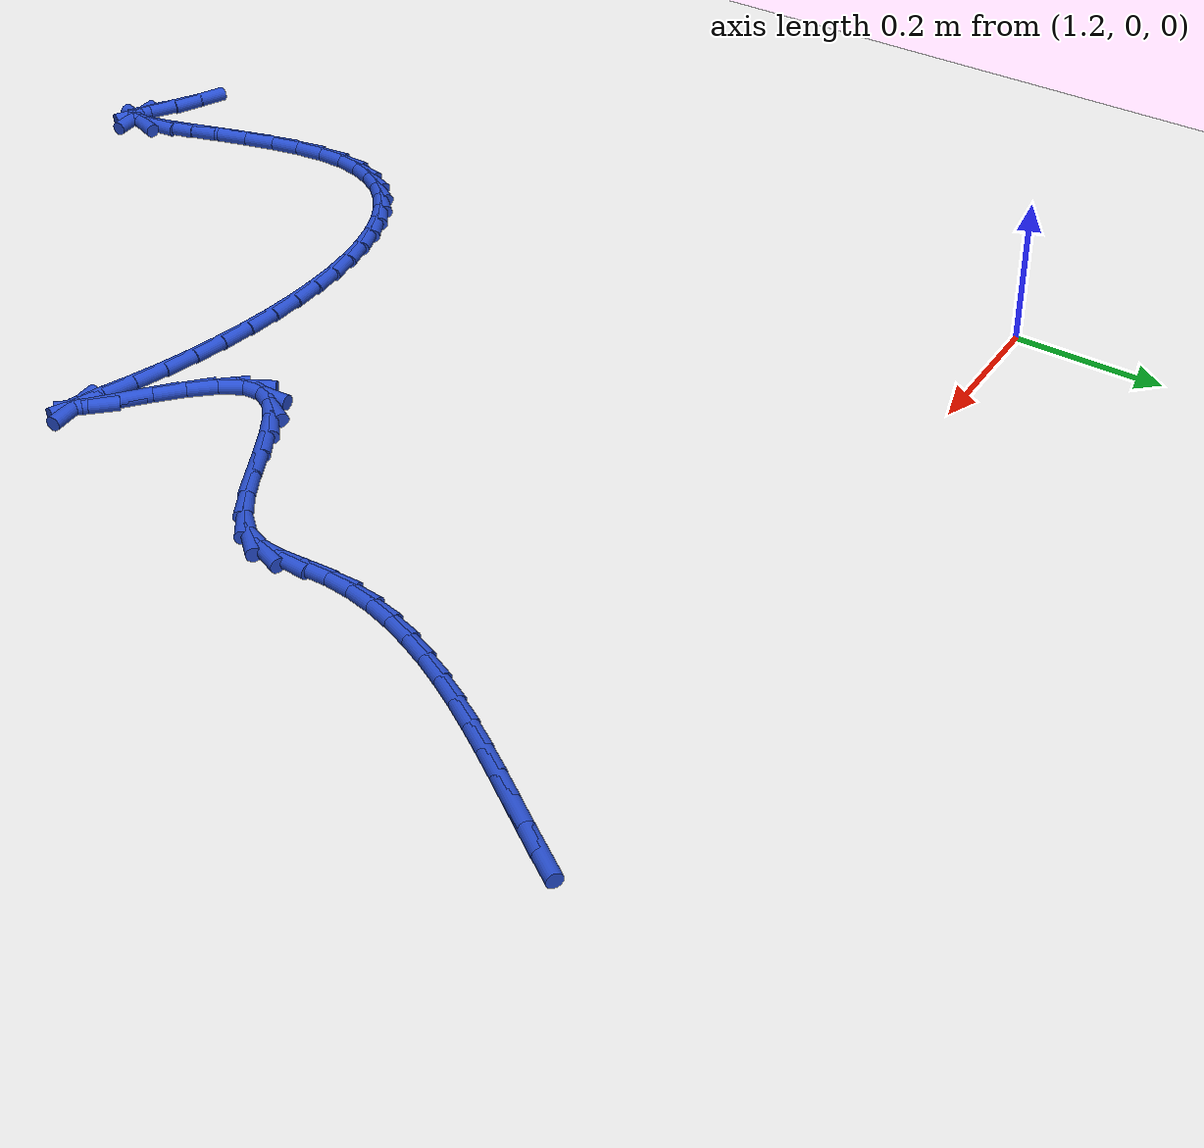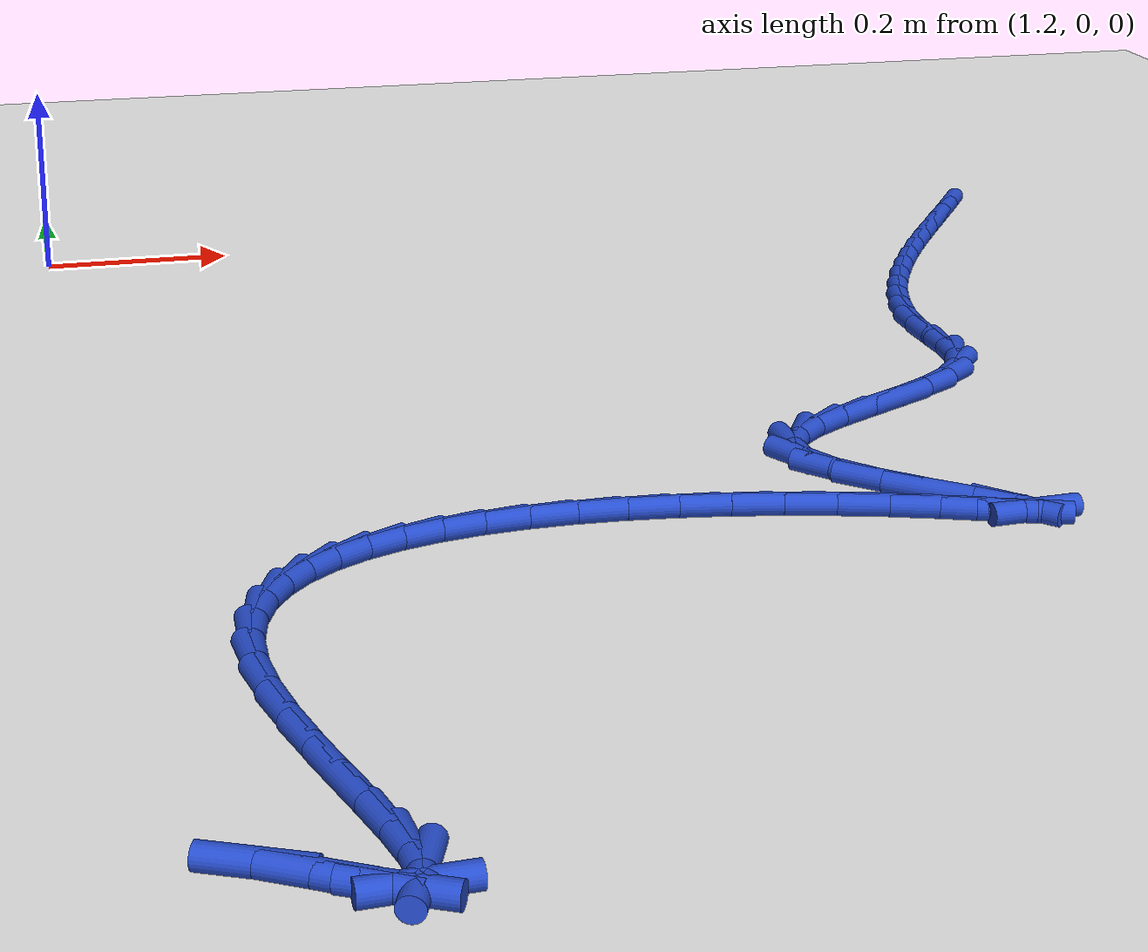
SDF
<sdf version="1.6">
 <world name="default">
  <model name="ground_plane">
   <static>1</static>
   <link name="link">
    <collision name="collision">
     <geometry><plane><normal>0 0 1</normal><size>100 100</size></plane></geometry>
     <surface><friction><ode><mu>100</mu><mu2>50</mu2></ode></friction></surface>
    </collision>
    <visual name="visual">
     <cast_shadows>0</cast_shadows>
     <geometry><plane><normal>0 0 1</normal><size>100 100</size></plane></geometry>
     <material>
      <script><uri>file://media/materials/scripts/gazebo.material</uri><name>Gazebo/WhiteGlow</name></script>
     </material>
    </visual>
   </link>
  </model>
  <model name="line">
   <link name="link_135">
    <pose>2.295636910752263 -0.007990219199116327 0.01 0 1.57 0.9678860935777894</pose>
    <collision name="collision">
     <geometry><cylinder><radius>0.01</radius><length>0.08</length></cylinder></geometry>
    </collision>
    <visual name="visual">
     <material>
      <script><name>Gazebo/Blue</name><uri>file://media/materials/scripts/gazebo.material</uri></script>
     </material>
     <geometry><cylinder><radius>0.01</radius><length>0.08</length></cylinder></geometry>
    </visual>
   </link>
   <link name="link_136">
    <pose>2.2742676581805794 -0.03903133396205915 0.01 0 1.57 0.9601270736967125</pose>
    <collision name="collision">
     <geometry><cylinder><radius>0.01</radius><length>0.08</length></cylinder></geometry>
    </collision>
    <visual name="visual">
     <material>
      <script><name>Gazebo/Blue</name><uri>file://media/materials/scripts/gazebo.material</uri></script>
     </material>
     <geometry><cylinder><radius>0.01</radius><length>0.08</length></cylinder></geometry>
    </visual>
   </link>
   <link name="link_137">
    <pose>2.2521357814463294 -0.07065211764610266 0.01 0 1.57 0.9603585340297466</pose>
    <collision name="collision">
     <geometry><cylinder><radius>0.01</radius><length>0.08</length></cylinder></geometry>
    </collision>
    <visual name="visual">
     <material>
      <script><name>Gazebo/Blue</name><uri>file://media/materials/scripts/gazebo.material</uri></script>
     </material>
     <geometry><cylinder><radius>0.01</radius><length>0.08</length></cylinder></geometry>
    </visual>
   </link>
   <link name="link_138">
    <pose>2.2296468522507724 -0.10279887400153252 0.01 0 1.57 0.968200429073571</pose>
    <collision name="collision">
     <geometry><cylinder><radius>0.01</radius><length>0.08</length></cylinder></geometry>
    </collision>
    <visual name="visual">
     <material>
      <script><name>Gazebo/Blue</name><uri>file://media/materials/scripts/gazebo.material</uri></script>
     </material>
     <geometry><cylinder><radius>0.01</radius><length>0.08</length></cylinder></geometry>
    </visual>
   </link>
   <link name="link_139">
    <pose>2.207206442295176 -0.13541790677863075 0.01 0 1.57 0.9836063062706092</pose>
    <collision name="collision">
     <geometry><cylinder><radius>0.01</radius><length>0.08</length></cylinder></geometry>
    </collision>
    <visual name="visual">
     <material>
      <script><name>Gazebo/Blue</name><uri>file://media/materials/scripts/gazebo.material</uri></script>
     </material>
     <geometry><cylinder><radius>0.01</radius><length>0.08</length></cylinder></geometry>
    </visual>
   </link>
   <link name="link_140">
    <pose>2.185220123280801 -0.16845551972768208 0.01 0 1.57 1.0068309662892454</pose>
    <collision name="collision">
     <geometry><cylinder><radius>0.01</radius><length>0.08</length></cylinder></geometry>
    </collision>
    <visual name="visual">
     <material>
      <script><name>Gazebo/Blue</name><uri>file://media/materials/scripts/gazebo.material</uri></script>
     </material>
     <geometry><cylinder><radius>0.01</radius><length>0.08</length></cylinder></geometry>
    </visual>
   </link>
   <link name="link_141">
    <pose>2.1640934669089114 -0.20185801659897143 0.01 0 1.57 1.038414882104268</pose>
    <collision name="collision">
     <geometry><cylinder><radius>0.01</radius><length>0.08</length></cylinder></geometry>
    </collision>
    <visual name="visual">
     <material>
      <script><name>Gazebo/Blue</name><uri>file://media/materials/scripts/gazebo.material</uri></script>
     </material>
     <geometry><cylinder><radius>0.01</radius><length>0.08</length></cylinder></geometry>
    </visual>
   </link>
   <link name="link_142">
    <pose>2.144232044880771 -0.2355717011427806 0.01 0 1.57 1.0791753715170336</pose>
    <collision name="collision">
     <geometry><cylinder><radius>0.01</radius><length>0.08</length></cylinder></geometry>
    </collision>
    <visual name="visual">
     <material>
      <script><name>Gazebo/Blue</name><uri>file://media/materials/scripts/gazebo.material</uri></script>
     </material>
     <geometry><cylinder><radius>0.01</radius><length>0.08</length></cylinder></geometry>
    </visual>
   </link>
   <link name="link_143">
    <pose>2.1260414288976435 -0.26954287710939545 0.01 0 1.57 1.1301898481446715</pose>
    <collision name="collision">
     <geometry><cylinder><radius>0.01</radius><length>0.08</length></cylinder></geometry>
    </collision>
    <visual name="visual">
     <material>
      <script><name>Gazebo/Blue</name><uri>file://media/materials/scripts/gazebo.material</uri></script>
     </material>
     <geometry><cylinder><radius>0.01</radius><length>0.08</length></cylinder></geometry>
    </visual>
   </link>
   <link name="link_144">
    <pose>2.109927190660792 -0.30371784824909787 0.01 0 1.57 1.1927470635307935</pose>
    <collision name="collision">
     <geometry><cylinder><radius>0.01</radius><length>0.08</length></cylinder></geometry>
    </collision>
    <visual name="visual">
     <material>
      <script><name>Gazebo/Blue</name><uri>file://media/materials/scripts/gazebo.material</uri></script>
     </material>
     <geometry><cylinder><radius>0.01</radius><length>0.08</length></cylinder></geometry>
    </visual>
   </link>
   <link name="link_145">
    <pose>2.0962949018714805 -0.3380429183121738 0.01 0 1.57 1.2682275737779116</pose>
    <collision name="collision">
     <geometry><cylinder><radius>0.01</radius><length>0.08</length></cylinder></geometry>
    </collision>
    <visual name="visual">
     <material>
      <script><name>Gazebo/Blue</name><uri>file://media/materials/scripts/gazebo.material</uri></script>
     </material>
     <geometry><cylinder><radius>0.01</radius><length>0.08</length></cylinder></geometry>
    </visual>
   </link>
   <link name="link_146">
    <pose>2.085550134230973 -0.37246439104890494 0.01 0 1.57 1.3578590755464826</pose>
    <collision name="collision">
     <geometry><cylinder><radius>0.01</radius><length>0.08</length></cylinder></geometry>
    </collision>
    <visual name="visual">
     <material>
      <script><name>Gazebo/Blue</name><uri>file://media/materials/scripts/gazebo.material</uri></script>
     </material>
     <geometry><cylinder><radius>0.01</radius><length>0.08</length></cylinder></geometry>
    </visual>
   </link>
   <link name="link_147">
    <pose>2.0780984594405316 -0.4069285702095772 0.01 0 1.57 1.4622934326257215</pose>
    <collision name="collision">
     <geometry><cylinder><radius>0.01</radius><length>0.08</length></cylinder></geometry>
    </collision>
    <visual name="visual">
     <material>
      <script><name>Gazebo/Blue</name><uri>file://media/materials/scripts/gazebo.material</uri></script>
     </material>
     <geometry><cylinder><radius>0.01</radius><length>0.08</length></cylinder></geometry>
    </visual>
   </link>
   <link name="link_148">
    <pose>2.0743454492014215 -0.44138175954447245 0.01 0 1.57 -1.5654475632832552</pose>
    <collision name="collision">
     <geometry><cylinder><radius>0.01</radius><length>0.08</length></cylinder></geometry>
    </collision>
    <visual name="visual">
     <material>
      <script><name>Gazebo/Blue</name><uri>file://media/materials/scripts/gazebo.material</uri></script>
     </material>
     <geometry><cylinder><radius>0.01</radius><length>0.08</length></cylinder></geometry>
    </visual>
   </link>
   <link name="link_149">
    <pose>2.0745291989266836 -0.4757351147720191 0.01 0 1.57 -1.5288128210755687</pose>
    <collision name="collision">
     <geometry><cylinder><radius>0.01</radius><length>0.08</length></cylinder></geometry>
    </collision>
    <visual name="visual">
     <material>
      <script><name>Gazebo/Blue</name><uri>file://media/materials/scripts/gazebo.material</uri></script>
     </material>
     <geometry><cylinder><radius>0.01</radius><length>0.08</length></cylinder></geometry>
    </visual>
   </link>
   <link name="link_150">
    <pose>2.0759383925492356 -0.5092808024405013 0.01 0 1.57 1.4885172902924089</pose>
    <collision name="collision">
     <geometry><cylinder><radius>0.01</radius><length>0.08</length></cylinder></geometry>
    </collision>
    <visual name="visual">
     <material>
      <script><name>Gazebo/Blue</name><uri>file://media/materials/scripts/gazebo.material</uri></script>
     </material>
     <geometry><cylinder><radius>0.01</radius><length>0.08</length></cylinder></geometry>
    </visual>
   </link>
   <link name="link_151">
    <pose>2.073340648148218 -0.5407818962702938 0.01 0 1.57 1.1753179009462458</pose>
    <collision name="collision">
     <geometry><cylinder><radius>0.01</radius><length>0.08</length></cylinder></geometry>
    </collision>
    <visual name="visual">
     <material>
      <script><name>Gazebo/Blue</name><uri>file://media/materials/scripts/gazebo.material</uri></script>
     </material>
     <geometry><cylinder><radius>0.01</radius><length>0.08</length></cylinder></geometry>
    </visual>
   </link>
   <link name="link_152">
    <pose>2.0615532254149933 -0.5690170344115577 0.01 0 1.57 0.8340464099286048</pose>
    <collision name="collision">
     <geometry><cylinder><radius>0.01</radius><length>0.08</length></cylinder></geometry>
    </collision>
    <visual name="visual">
     <material>
      <script><name>Gazebo/Blue</name><uri>file://media/materials/scripts/gazebo.material</uri></script>
     </material>
     <geometry><cylinder><radius>0.01</radius><length>0.08</length></cylinder></geometry>
    </visual>
   </link>
   <link name="link_153">
    <pose>2.0391591109160987 -0.5937033372140831 0.01 0 1.57 0.6280518775539798</pose>
    <collision name="collision">
     <geometry><cylinder><radius>0.01</radius><length>0.08</length></cylinder></geometry>
    </collision>
    <visual name="visual">
     <material>
      <script><name>Gazebo/Blue</name><uri>file://media/materials/scripts/gazebo.material</uri></script>
     </material>
     <geometry><cylinder><radius>0.01</radius><length>0.08</length></cylinder></geometry>
    </visual>
   </link>
   <link name="link_154">
    <pose>2.0089832497285935 -0.6156150921259844 0.01 0 1.57 0.5196109148111152</pose>
    <collision name="collision">
     <geometry><cylinder><radius>0.01</radius><length>0.08</length></cylinder></geometry>
    </collision>
    <visual name="visual">
     <material>
      <script><name>Gazebo/Blue</name><uri>file://media/materials/scripts/gazebo.material</uri></script>
     </material>
     <geometry><cylinder><radius>0.01</radius><length>0.08</length></cylinder></geometry>
    </visual>
   </link>
   <link name="link_155">
    <pose>1.9740770437862334 -0.635583023436397 0.01 0 1.57 0.47586665474007833</pose>
    <collision name="collision">
     <geometry><cylinder><radius>0.01</radius><length>0.08</length></cylinder></geometry>
    </collision>
    <visual name="visual">
     <material>
      <script><name>Gazebo/Blue</name><uri>file://media/materials/scripts/gazebo.material</uri></script>
     </material>
     <geometry><cylinder><radius>0.01</radius><length>0.08</length></cylinder></geometry>
    </visual>
   </link>
   <link name="link_156">
    <pose>1.9374918950227724 -0.6544378554344594 0.01 0 1.57 0.4853551119250641</pose>
    <collision name="collision">
     <geometry><cylinder><radius>0.01</radius><length>0.08</length></cylinder></geometry>
    </collision>
    <visual name="visual">
     <material>
      <script><name>Gazebo/Blue</name><uri>file://media/materials/scripts/gazebo.material</uri></script>
     </material>
     <geometry><cylinder><radius>0.01</radius><length>0.08</length></cylinder></geometry>
    </visual>
   </link>
   <link name="link_157">
    <pose>1.9022792053719673 -0.6730103124093068 0.01 0 1.57 0.5557398578666544</pose>
    <collision name="collision">
     <geometry><cylinder><radius>0.01</radius><length>0.08</length></cylinder></geometry>
    </collision>
    <visual name="visual">
     <material>
      <script><name>Gazebo/Blue</name><uri>file://media/materials/scripts/gazebo.material</uri></script>
     </material>
     <geometry><cylinder><radius>0.01</radius><length>0.08</length></cylinder></geometry>
    </visual>
   </link>
   <link name="link_158">
    <pose>1.8714903767675712 -0.6921311186500773 0.01 0 1.57 0.721266541089823</pose>
    <collision name="collision">
     <geometry><cylinder><radius>0.01</radius><length>0.08</length></cylinder></geometry>
    </collision>
    <visual name="visual">
     <material>
      <script><name>Gazebo/Blue</name><uri>file://media/materials/scripts/gazebo.material</uri></script>
     </material>
     <geometry><cylinder><radius>0.01</radius><length>0.08</length></cylinder></geometry>
    </visual>
   </link>
   <link name="link_159">
    <pose>1.8481768111433416 -0.712630998445907 0.01 0 1.57 1.0579819147887182</pose>
    <collision name="collision">
     <geometry><cylinder><radius>0.01</radius><length>0.08</length></cylinder></geometry>
    </collision>
    <visual name="visual">
     <material>
      <script><name>Gazebo/Blue</name><uri>file://media/materials/scripts/gazebo.material</uri></script>
     </material>
     <geometry><cylinder><radius>0.01</radius><length>0.08</length></cylinder></geometry>
    </visual>
   </link>
   <link name="link_160">
    <pose>1.835389910433032 -0.7353406760859329 0.01 0 1.57 -1.540081329226758</pose>
    <collision name="collision">
     <geometry><cylinder><radius>0.01</radius><length>0.08</length></cylinder></geometry>
    </collision>
    <visual name="visual">
     <material>
      <script><name>Gazebo/Blue</name><uri>file://media/materials/scripts/gazebo.material</uri></script>
     </material>
     <geometry><cylinder><radius>0.01</radius><length>0.08</length></cylinder></geometry>
    </visual>
   </link>
   <link name="link_161">
    <pose>1.836181076570398 -0.7610908758592931 0.01 0 1.57 -1.056223593869024</pose>
    <collision name="collision">
     <geometry><cylinder><radius>0.01</radius><length>0.08</length></cylinder></geometry>
    </collision>
    <visual name="visual">
     <material>
      <script><name>Gazebo/Blue</name><uri>file://media/materials/scripts/gazebo.material</uri></script>
     </material>
     <geometry><cylinder><radius>0.01</radius><length>0.08</length></cylinder></geometry>
    </visual>
   </link>
   <link name="link_162">
    <pose>1.8527521406185554 -0.7904006038868858 0.01 0 1.57 -0.8301087965815132</pose>
    <collision name="collision">
     <geometry><cylinder><radius>0.01</radius><length>0.08</length></cylinder></geometry>
    </collision>
    <visual name="visual">
     <material>
      <script><name>Gazebo/Blue</name><uri>file://media/materials/scripts/gazebo.material</uri></script>
     </material>
     <geometry><cylinder><radius>0.01</radius><length>0.08</length></cylinder></geometry>
    </visual>
   </link>
   <link name="link_163">
    <pose>1.8812490724367004 -0.8215668951429801 0.01 0 1.57 -0.7297084643071602</pose>
    <collision name="collision">
     <geometry><cylinder><radius>0.01</radius><length>0.08</length></cylinder></geometry>
    </collision>
    <visual name="visual">
     <material>
      <script><name>Gazebo/Blue</name><uri>file://media/materials/scripts/gazebo.material</uri></script>
     </material>
     <geometry><cylinder><radius>0.01</radius><length>0.08</length></cylinder></geometry>
    </visual>
   </link>
   <link name="link_164">
    <pose>1.9151884557139531 -0.8519220299605885 0.01 0 1.57 -0.6850770086738299</pose>
    <collision name="collision">
     <geometry><cylinder><radius>0.01</radius><length>0.08</length></cylinder></geometry>
    </collision>
    <visual name="visual">
     <material>
      <script><name>Gazebo/Blue</name><uri>file://media/materials/scripts/gazebo.material</uri></script>
     </material>
     <geometry><cylinder><radius>0.01</radius><length>0.08</length></cylinder></geometry>
    </visual>
   </link>
   <link name="link_165">
    <pose>1.948076185276486 -0.8787943667953482 0.01 0 1.57 -0.6853407387052238</pose>
    <collision name="collision">
     <geometry><cylinder><radius>0.01</radius><length>0.08</length></cylinder></geometry>
    </collision>
    <visual name="visual">
     <material>
      <script><name>Gazebo/Blue</name><uri>file://media/materials/scripts/gazebo.material</uri></script>
     </material>
     <geometry><cylinder><radius>0.01</radius><length>0.08</length></cylinder></geometry>
    </visual>
   </link>
   <link name="link_166">
    <pose>1.9734181559504695 -0.8995122641028936 0.01 0 1.57 -0.8108178652275184</pose>
    <collision name="collision">
     <geometry><cylinder><radius>0.01</radius><length>0.08</length></cylinder></geometry>
    </collision>
    <visual name="visual">
     <material>
      <script><name>Gazebo/Blue</name><uri>file://media/materials/scripts/gazebo.material</uri></script>
     </material>
     <geometry><cylinder><radius>0.01</radius><length>0.08</length></cylinder></geometry>
    </visual>
   </link>
   <link name="link_167">
    <pose>1.9847202625620763 -0.9114040803388616 0.01 0 1.57 0.05684601629162363</pose>
    <collision name="collision">
     <geometry><cylinder><radius>0.01</radius><length>0.08</length></cylinder></geometry>
    </collision>
    <visual name="visual">
     <material>
      <script><name>Gazebo/Blue</name><uri>file://media/materials/scripts/gazebo.material</uri></script>
     </material>
     <geometry><cylinder><radius>0.01</radius><length>0.08</length></cylinder></geometry>
    </visual>
   </link>
   <link name="link_168">
    <pose>1.9757072323746119 -0.9119169878004113 0.01 0 1.57 -0.3245427707365813</pose>
    <collision name="collision">
     <geometry><cylinder><radius>0.01</radius><length>0.08</length></cylinder></geometry>
    </collision>
    <visual name="visual">
     <material>
      <script><name>Gazebo/Blue</name><uri>file://media/materials/scripts/gazebo.material</uri></script>
     </material>
     <geometry><cylinder><radius>0.01</radius><length>0.08</length></cylinder></geometry>
    </visual>
   </link>
   <link name="link_169">
    <pose>1.9470791659944209 -0.9022853985276008 0.01 0 1.57 -0.34362766768978065</pose>
    <collision name="collision">
     <geometry><cylinder><radius>0.01</radius><length>0.08</length></cylinder></geometry>
    </collision>
    <visual name="visual">
     <material>
      <script><name>Gazebo/Blue</name><uri>file://media/materials/scripts/gazebo.material</uri></script>
     </material>
     <geometry><cylinder><radius>0.01</radius><length>0.08</length></cylinder></geometry>
    </visual>
   </link>
   <link name="link_170">
    <pose>1.9077992045655 -0.8882300959268027 0.01 0 1.57 -0.3106038502766441</pose>
    <collision name="collision">
     <geometry><cylinder><radius>0.01</radius><length>0.08</length></cylinder></geometry>
    </collision>
    <visual name="visual">
     <material>
      <script><name>Gazebo/Blue</name><uri>file://media/materials/scripts/gazebo.material</uri></script>
     </material>
     <geometry><cylinder><radius>0.01</radius><length>0.08</length></cylinder></geometry>
    </visual>
   </link>
   <link name="link_171">
    <pose>1.8657685200408403 -0.8747385216992077 0.01 0 1.57 -0.26908137059970305</pose>
    <collision name="collision">
     <geometry><cylinder><radius>0.01</radius><length>0.08</length></cylinder></geometry>
    </collision>
    <visual name="visual">
     <material>
      <script><name>Gazebo/Blue</name><uri>file://media/materials/scripts/gazebo.material</uri></script>
     </material>
     <geometry><cylinder><radius>0.01</radius><length>0.08</length></cylinder></geometry>
    </visual>
   </link>
   <link name="link_172">
    <pose>1.8228434901155128 -0.8629011121623552 0.01 0 1.57 -0.22729253174171848</pose>
    <collision name="collision">
     <geometry><cylinder><radius>0.01</radius><length>0.08</length></cylinder></geometry>
    </collision>
    <visual name="visual">
     <material>
      <script><name>Gazebo/Blue</name><uri>file://media/materials/scripts/gazebo.material</uri></script>
     </material>
     <geometry><cylinder><radius>0.01</radius><length>0.08</length></cylinder></geometry>
    </visual>
   </link>
   <link name="link_173">
    <pose>1.7793981885710968 -0.8528526803181483 0.01 0 1.57 -0.18426704328143673</pose>
    <collision name="collision">
     <geometry><cylinder><radius>0.01</radius><length>0.08</length></cylinder></geometry>
    </collision>
    <visual name="visual">
     <material>
      <script><name>Gazebo/Blue</name><uri>file://media/materials/scripts/gazebo.material</uri></script>
     </material>
     <geometry><cylinder><radius>0.01</radius><length>0.08</length></cylinder></geometry>
    </visual>
   </link>
   <link name="link_174">
    <pose>1.7358066891891633 -0.8447280391684883 0.01 0 1.57 -0.13898579644474612</pose>
    <collision name="collision">
     <geometry><cylinder><radius>0.01</radius><length>0.08</length></cylinder></geometry>
    </collision>
    <visual name="visual">
     <material>
      <script><name>Gazebo/Blue</name><uri>file://media/materials/scripts/gazebo.material</uri></script>
     </material>
     <geometry><cylinder><radius>0.01</radius><length>0.08</length></cylinder></geometry>
    </visual>
   </link>
   <link name="link_175">
    <pose>1.6924430657512906 -0.8386620017152769 0.01 0 1.57 -0.09031651335118922</pose>
    <collision name="collision">
     <geometry><cylinder><radius>0.01</radius><length>0.08</length></cylinder></geometry>
    </collision>
    <visual name="visual">
     <material>
      <script><name>Gazebo/Blue</name><uri>file://media/materials/scripts/gazebo.material</uri></script>
     </material>
     <geometry><cylinder><radius>0.01</radius><length>0.08</length></cylinder></geometry>
    </visual>
   </link>
   <link name="link_176">
    <pose>1.649681392039051 -0.8347893809604163 0.01 0 1.57 -0.036943026964944635</pose>
    <collision name="collision">
     <geometry><cylinder><radius>0.01</radius><length>0.08</length></cylinder></geometry>
    </collision>
    <visual name="visual">
     <material>
      <script><name>Gazebo/Blue</name><uri>file://media/materials/scripts/gazebo.material</uri></script>
     </material>
     <geometry><cylinder><radius>0.01</radius><length>0.08</length></cylinder></geometry>
    </visual>
   </link>
   <link name="link_177">
    <pose>1.6078957418340216 -0.833244989905808 0.01 0 1.57 0.022715001442445277</pose>
    <collision name="collision">
     <geometry><cylinder><radius>0.01</radius><length>0.08</length></cylinder></geometry>
    </collision>
    <visual name="visual">
     <material>
      <script><name>Gazebo/Blue</name><uri>file://media/materials/scripts/gazebo.material</uri></script>
     </material>
     <geometry><cylinder><radius>0.01</radius><length>0.08</length></cylinder></geometry>
    </visual>
   </link>
   <link name="link_178">
    <pose>1.5674601889177755 -0.8341636415533538 0.01 0 1.57 0.0905904763382929</pose>
    <collision name="collision">
     <geometry><cylinder><radius>0.01</radius><length>0.08</length></cylinder></geometry>
    </collision>
    <visual name="visual">
     <material>
      <script><name>Gazebo/Blue</name><uri>file://media/materials/scripts/gazebo.material</uri></script>
     </material>
     <geometry><cylinder><radius>0.01</radius><length>0.08</length></cylinder></geometry>
    </visual>
   </link>
   <link name="link_179">
    <pose>1.5287488070718902 -0.8376801489049558 0.01 0 1.57 0.1690521992433308</pose>
    <collision name="collision">
     <geometry><cylinder><radius>0.01</radius><length>0.08</length></cylinder></geometry>
    </collision>
    <visual name="visual">
     <material>
      <script><name>Gazebo/Blue</name><uri>file://media/materials/scripts/gazebo.material</uri></script>
     </material>
     <geometry><cylinder><radius>0.01</radius><length>0.08</length></cylinder></geometry>
    </visual>
   </link>
   <link name="link_180">
    <pose>1.4921356700779382 -0.8439293249625155 0.01 0 1.57 0.2609425306592328</pose>
    <collision name="collision">
     <geometry><cylinder><radius>0.01</radius><length>0.08</length></cylinder></geometry>
    </collision>
    <visual name="visual">
     <material>
      <script><name>Gazebo/Blue</name><uri>file://media/materials/scripts/gazebo.material</uri></script>
     </material>
     <geometry><cylinder><radius>0.01</radius><length>0.08</length></cylinder></geometry>
    </visual>
   </link>
   <link name="link_181">
    <pose>1.457994851717497 -0.8530459827279351 0.01 0 1.57 0.3694720779541152</pose>
    <collision name="collision">
     <geometry><cylinder><radius>0.01</radius><length>0.08</length></cylinder></geometry>
    </collision>
    <visual name="visual">
     <material>
      <script><name>Gazebo/Blue</name><uri>file://media/materials/scripts/gazebo.material</uri></script>
     </material>
     <geometry><cylinder><radius>0.01</radius><length>0.08</length></cylinder></geometry>
    </visual>
   </link>
   <link name="link_182">
    <pose>1.4267004257721405 -0.8651649352031159 0.01 0 1.57 0.49778035212369875</pose>
    <collision name="collision">
     <geometry><cylinder><radius>0.01</radius><length>0.08</length></cylinder></geometry>
    </collision>
    <visual name="visual">
     <material>
      <script><name>Gazebo/Blue</name><uri>file://media/materials/scripts/gazebo.material</uri></script>
     </material>
     <geometry><cylinder><radius>0.01</radius><length>0.08</length></cylinder></geometry>
    </visual>
   </link>
   <link name="link_183">
    <pose>1.3986264660234426 -0.8804209953899604 0.01 0 1.57 0.6478897266951781</pose>
    <collision name="collision">
     <geometry><cylinder><radius>0.01</radius><length>0.08</length></cylinder></geometry>
    </collision>
    <visual name="visual">
     <material>
      <script><name>Gazebo/Blue</name><uri>file://media/materials/scripts/gazebo.material</uri></script>
     </material>
     <geometry><cylinder><radius>0.01</radius><length>0.08</length></cylinder></geometry>
    </visual>
   </link>
   <link name="link_184">
    <pose>1.3741470462529803 -0.8989489762903696 0.01 0 1.57 0.818932321935251</pose>
    <collision name="collision">
     <geometry><cylinder><radius>0.01</radius><length>0.08</length></cylinder></geometry>
    </collision>
    <visual name="visual">
     <material>
      <script><name>Gazebo/Blue</name><uri>file://media/materials/scripts/gazebo.material</uri></script>
     </material>
     <geometry><cylinder><radius>0.01</radius><length>0.08</length></cylinder></geometry>
    </visual>
   </link>
   <link name="link_185">
    <pose>1.3536362402423265 -0.9208836909062461 0.01 0 1.57 1.0052986969302657</pose>
    <collision name="collision">
     <geometry><cylinder><radius>0.01</radius><length>0.08</length></cylinder></geometry>
    </collision>
    <visual name="visual">
     <material>
      <script><name>Gazebo/Blue</name><uri>file://media/materials/scripts/gazebo.material</uri></script>
     </material>
     <geometry><cylinder><radius>0.01</radius><length>0.08</length></cylinder></geometry>
    </visual>
   </link>
   <link name="link_186">
    <pose>1.3374681217730588 -0.9463599522394912 0.01 0 1.57 1.1965060453452832</pose>
    <collision name="collision">
     <geometry><cylinder><radius>0.01</radius><length>0.08</length></cylinder></geometry>
    </collision>
    <visual name="visual">
     <material>
      <script><name>Gazebo/Blue</name><uri>file://media/materials/scripts/gazebo.material</uri></script>
     </material>
     <geometry><cylinder><radius>0.01</radius><length>0.08</length></cylinder></geometry>
    </visual>
   </link>
   <link name="link_187">
    <pose>1.3260167646267504 -0.9755125732920074 0.01 0 1.57 1.3801840898101672</pose>
    <collision name="collision">
     <geometry><cylinder><radius>0.01</radius><length>0.08</length></cylinder></geometry>
    </collision>
    <visual name="visual">
     <material>
      <script><name>Gazebo/Blue</name><uri>file://media/materials/scripts/gazebo.material</uri></script>
     </material>
     <geometry><cylinder><radius>0.01</radius><length>0.08</length></cylinder></geometry>
    </visual>
   </link>
   <link name="link_188">
    <pose>1.3196562425849767 -1.0084763670656949 0.01 0 1.57 1.5464988908370996</pose>
    <collision name="collision">
     <geometry><cylinder><radius>0.01</radius><length>0.08</length></cylinder></geometry>
    </collision>
    <visual name="visual">
     <material>
      <script><name>Gazebo/Blue</name><uri>file://media/materials/scripts/gazebo.material</uri></script>
     </material>
     <geometry><cylinder><radius>0.01</radius><length>0.08</length></cylinder></geometry>
    </visual>
   </link>
   <link name="link_189">
    <pose>1.318759284623162 -1.045384847674297 0.01 0 1.57 -1.4611723782749815</pose>
    <collision name="collision">
     <geometry><cylinder><radius>0.01</radius><length>0.08</length></cylinder></geometry>
    </collision>
    <visual name="visual">
     <material>
      <script><name>Gazebo/Blue</name><uri>file://media/materials/scripts/gazebo.material</uri></script>
     </material>
     <geometry><cylinder><radius>0.01</radius><length>0.08</length></cylinder></geometry>
    </visual>
   </link>
   <link name="link_190">
    <pose>1.3232195651096583 -1.0859088317959853 0.01 0 1.57 -1.3735552121549048</pose>
    <collision name="collision">
     <geometry><cylinder><radius>0.01</radius><length>0.08</length></cylinder></geometry>
    </collision>
    <visual name="visual">
     <material>
      <script><name>Gazebo/Blue</name><uri>file://media/materials/scripts/gazebo.material</uri></script>
     </material>
     <geometry><cylinder><radius>0.01</radius><length>0.08</length></cylinder></geometry>
    </visual>
   </link>
   <link name="link_191">
    <pose>1.3317458909541364 -1.1285747255834384 0.01 0 1.57 -1.3186108563525878</pose>
    <collision name="collision">
     <geometry><cylinder><radius>0.01</radius><length>0.08</length></cylinder></geometry>
    </collision>
    <visual name="visual">
     <material>
      <script><name>Gazebo/Blue</name><uri>file://media/materials/scripts/gazebo.material</uri></script>
     </material>
     <geometry><cylinder><radius>0.01</radius><length>0.08</length></cylinder></geometry>
    </visual>
   </link>
   <link name="link_192">
    <pose>1.3428670716621374 -1.1717350837409375 0.01 0 1.57 -1.2871625249450727</pose>
    <collision name="collision">
     <geometry><cylinder><radius>0.01</radius><length>0.08</length></cylinder></geometry>
    </collision>
    <visual name="visual">
     <material>
      <script><name>Gazebo/Blue</name><uri>file://media/materials/scripts/gazebo.material</uri></script>
     </material>
     <geometry><cylinder><radius>0.01</radius><length>0.08</length></cylinder></geometry>
    </visual>
   </link>
   <link name="link_193">
    <pose>1.355111916739202 -1.2137424609727665 0.01 0 1.57 -1.276178116237062</pose>
    <collision name="collision">
     <geometry><cylinder><radius>0.01</radius><length>0.08</length></cylinder></geometry>
    </collision>
    <visual name="visual">
     <material>
      <script><name>Gazebo/Blue</name><uri>file://media/materials/scripts/gazebo.material</uri></script>
     </material>
     <geometry><cylinder><radius>0.01</radius><length>0.08</length></cylinder></geometry>
    </visual>
   </link>
   <link name="link_194">
    <pose>1.367009235690872 -1.2529494119832094 0.01 0 1.57 -1.2885795270299085</pose>
    <collision name="collision">
     <geometry><cylinder><radius>0.01</radius><length>0.08</length></cylinder></geometry>
    </collision>
    <visual name="visual">
     <material>
      <script><name>Gazebo/Blue</name><uri>file://media/materials/scripts/gazebo.material</uri></script>
     </material>
     <geometry><cylinder><radius>0.01</radius><length>0.08</length></cylinder></geometry>
    </visual>
   </link>
   <link name="link_195">
    <pose>1.3770878380226885 -1.2877084914765475 0.01 0 1.57 -1.3382423805527657</pose>
    <collision name="collision">
     <geometry><cylinder><radius>0.01</radius><length>0.08</length></cylinder></geometry>
    </collision>
    <visual name="visual">
     <material>
      <script><name>Gazebo/Blue</name><uri>file://media/materials/scripts/gazebo.material</uri></script>
     </material>
     <geometry><cylinder><radius>0.01</radius><length>0.08</length></cylinder></geometry>
    </visual>
   </link>
   <link name="link_196">
    <pose>1.383876533240193 -1.3163722541570648 0.01 0 1.57 -1.474181214344526</pose>
    <collision name="collision">
     <geometry><cylinder><radius>0.01</radius><length>0.08</length></cylinder></geometry>
    </collision>
    <visual name="visual">
     <material>
      <script><name>Gazebo/Blue</name><uri>file://media/materials/scripts/gazebo.material</uri></script>
     </material>
     <geometry><cylinder><radius>0.01</radius><length>0.08</length></cylinder></geometry>
    </visual>
   </link>
   <link name="link_197">
    <pose>1.3859041308489264 -1.3372932547290435 0.01 0 1.57 1.2211313723476818</pose>
    <collision name="collision">
     <geometry><cylinder><radius>0.01</radius><length>0.08</length></cylinder></geometry>
    </collision>
    <visual name="visual">
     <material>
      <script><name>Gazebo/Blue</name><uri>file://media/materials/scripts/gazebo.material</uri></script>
     </material>
     <geometry><cylinder><radius>0.01</radius><length>0.08</length></cylinder></geometry>
    </visual>
   </link>
   <link name="link_198">
    <pose>1.3816994403544294 -1.3488240478967664 0.01 0 1.57 0.04526980222613755</pose>
    <collision name="collision">
     <geometry><cylinder><radius>0.01</radius><length>0.08</length></cylinder></geometry>
    </collision>
    <visual name="visual">
     <material>
      <script><name>Gazebo/Blue</name><uri>file://media/materials/scripts/gazebo.material</uri></script>
     </material>
     <geometry><cylinder><radius>0.01</radius><length>0.08</length></cylinder></geometry>
    </visual>
   </link>
   <link name="link_199">
    <pose>1.369811757110075 -1.3493625688899975 0.01 0 1.57 -0.4561329949316617</pose>
    <collision name="collision">
     <geometry><cylinder><radius>0.01</radius><length>0.08</length></cylinder></geometry>
    </collision>
    <visual name="visual">
     <material>
      <script><name>Gazebo/Blue</name><uri>file://media/materials/scripts/gazebo.material</uri></script>
     </material>
     <geometry><cylinder><radius>0.01</radius><length>0.08</length></cylinder></geometry>
    </visual>
   </link>
   <link name="link_200">
    <pose>1.349800395137164 -1.3395441598681126 0.01 0 1.57 -0.5417952854606327</pose>
    <collision name="collision">
     <geometry><cylinder><radius>0.01</radius><length>0.08</length></cylinder></geometry>
    </collision>
    <visual name="visual">
     <material>
      <script><name>Gazebo/Blue</name><uri>file://media/materials/scripts/gazebo.material</uri></script>
     </material>
     <geometry><cylinder><radius>0.01</radius><length>0.08</length></cylinder></geometry>
    </visual>
   </link>
   <link name="link_201">
    <pose>1.3226757254816024 -1.323218564016136 0.01 0 1.57 -0.5148370561530183</pose>
    <collision name="collision">
     <geometry><cylinder><radius>0.01</radius><length>0.08</length></cylinder></geometry>
    </collision>
    <visual name="visual">
     <material>
      <script><name>Gazebo/Blue</name><uri>file://media/materials/scripts/gazebo.material</uri></script>
     </material>
     <geometry><cylinder><radius>0.01</radius><length>0.08</length></cylinder></geometry>
    </visual>
   </link>
   <link name="link_202">
    <pose>1.2895604588359335 -1.3044843808143645 0.01 0 1.57 -0.4217970907969285</pose>
    <collision name="collision">
     <geometry><cylinder><radius>0.01</radius><length>0.08</length></cylinder></geometry>
    </collision>
    <visual name="visual">
     <material>
      <script><name>Gazebo/Blue</name><uri>file://media/materials/scripts/gazebo.material</uri></script>
     </material>
     <geometry><cylinder><radius>0.01</radius><length>0.08</length></cylinder></geometry>
    </visual>
   </link>
  </model>
 </world>
</sdf>
